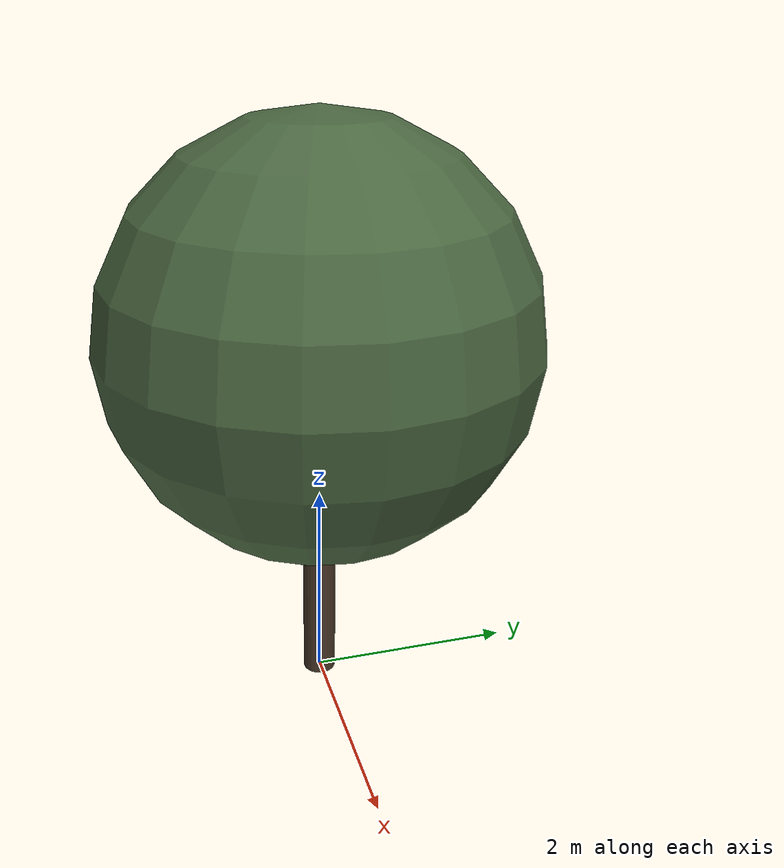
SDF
<?xml version="1.0" ?>
<sdf version="1.10">
  <model name="chene_vert_12">
    <static>true</static>

    <!-- Tronc -->
    <link name="trunk">
      <pose>0 0 1.491734087395955 0 0 0</pose>
      <visual name="trunk_visual">
        <geometry>
          <cylinder>
            <radius>0.15880702698185092</radius>
            <length>2.98346817479191</length>
          </cylinder>
        </geometry>
        <material>
          <ambient>0.29 0.22 0.16 1</ambient>
          <diffuse>0.29 0.22 0.16 1</diffuse>
          <specular>0.1 0.1 0.1 1</specular>
        </material>
      </visual>
      <collision name="trunk_collision">
        <geometry>
          <cylinder>
            <radius>0.15880702698185092</radius>
            <length>2.98346817479191</length>
          </cylinder>
        </geometry>
      </collision>
    </link>

    <!-- Feuillage -->
    <link name="crown">
      <pose>0 0 3.5829608681937954 0 0 0</pose>
      <visual name="crown_visual">
        <geometry>
          <sphere>
              <radius>1.998308978006285</radius>
            </sphere>
        </geometry>
        <material>
          <ambient>0.29 0.40 0.25 1</ambient>
          <diffuse>0.29 0.40 0.25 1</diffuse>
          <specular>0.1 0.1 0.1 1</specular>
        </material>
      </visual>
      <collision name="crown_collision">
        <geometry>
          <sphere>
            <radius>1.5986471824050281</radius>
          </sphere>
        </geometry>
      </collision>
    </link>

    <!-- Joint tronc-feuillage -->
    <joint name="trunk_crown_joint" type="fixed">
      <parent>trunk</parent>
      <child>crown</child>
    </joint>

  </model>
</sdf>
